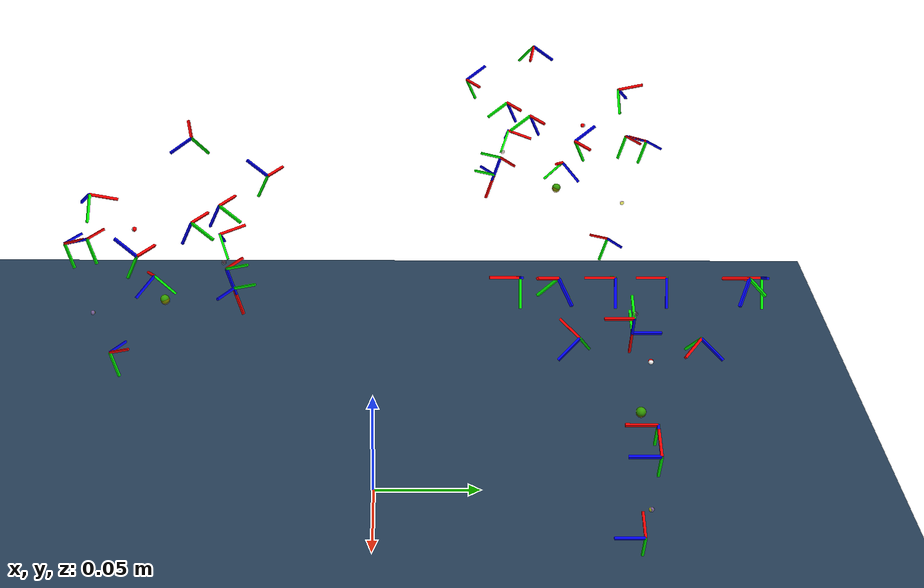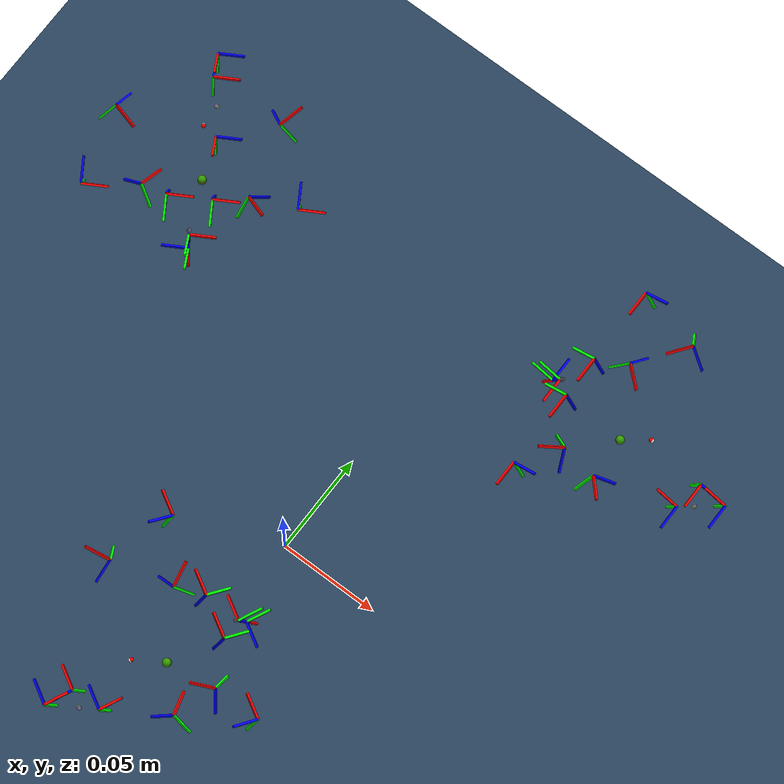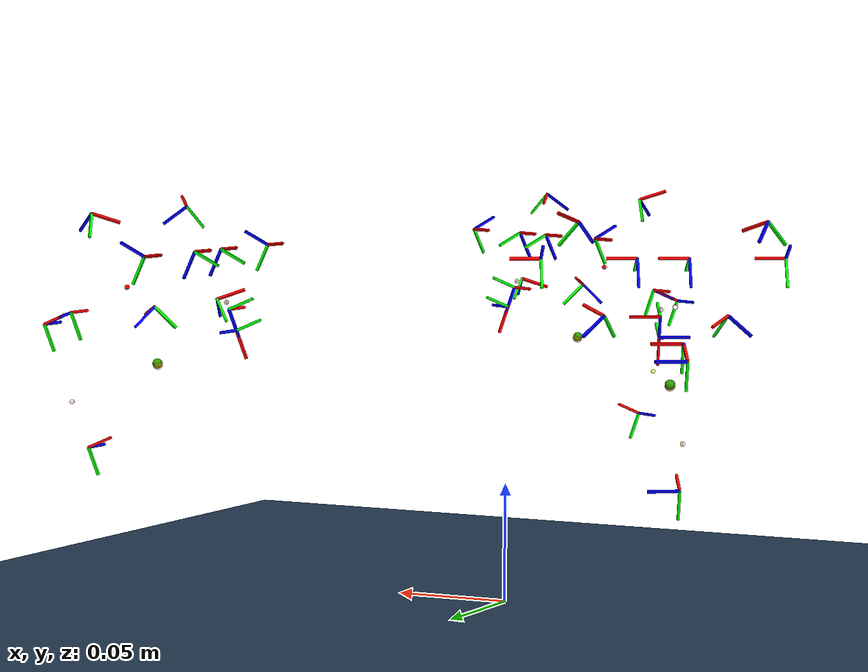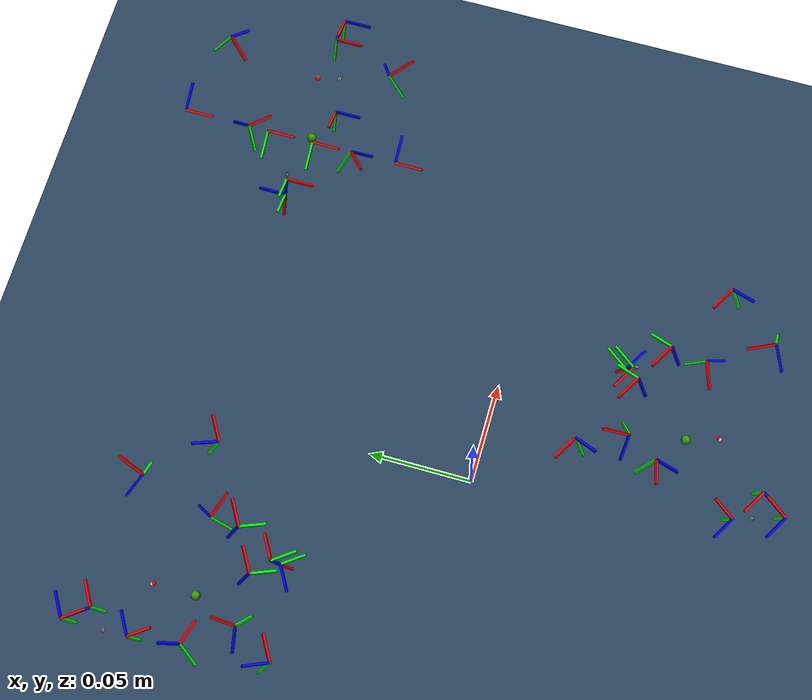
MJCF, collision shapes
<?xml version="1.0"?>
<mujoco model="faithful_3f_cspm">
  <compiler meshdir="stl_file/" angle="degree"/>
  <option timestep="0.0005" iterations="200" tolerance="1e-8" solver="Newton"/>

  <default>
    <default class="silicone_tip">
      <geom type="sphere" size="0.0082" friction="2.0 0.02 0.0001"
            solref="0.0005 200.0" solimp="0.99 0.995 0.0001"
            contype="1" conaffinity="1" condim="6" priority="1"/>
    </default>
  </default>

  <asset>
    <texture type="skybox" builtin="gradient" rgb1="0.3 0.5 0.7" rgb2="0 0 0" width="512" height="512"/>
    <texture type="2d" name="groundplane" builtin="checker" rgb1="0.2 0.3 0.4" rgb2="0.1 0.2 0.3" width="100" height="100"/>
    <material name="groundplane" texture="groundplane" texrepeat="10 10"/>
    <mesh name="mesh_platform" file="platform.STL"/>
    <mesh name="mesh_1_1" file="1_1.STL"/>
    <mesh name="mesh_1_2" file="1_2.STL"/>
    <mesh name="mesh_2_1" file="2_1.STL"/>
    <mesh name="mesh_2_2" file="2_2.STL"/>
    <mesh name="mesh_3_1" file="3_1.STL"/>
    <mesh name="mesh_3_2" file="3_2.STL"/>
    <mesh name="mesh_4_1" file="4_1.STL"/>
    <mesh name="mesh_4_2" file="4_2.STL"/>
    <mesh name="cspm14_adaptor" file="cspm14_adaptor.STL"/>
    <mesh name="cspm23_adaptor" file="cspm23_adaptor.STL"/>
    <mesh name="paralle_short" file="handtip_platform.STL"/>
    <mesh name="paralle_long" file="paralle_long.STL"/>
    <mesh name="sensor" file="sensor.STL"/>
    <mesh name="two_figer_platform" file="two_figer_platform.STL"/>
    <mesh name="base1" file="base1.STL"/>
    <mesh name="base2" file="base2.STL"/>
    <mesh name="hhtac_base" file="hhtac/hhtac_1.STL"/>
    <mesh name="hhtac_contact" file="hhtac/hhtac_contact.STL"/>
  </asset>

  <worldbody>
    <geom name="ground" type="plane" size="0 0 1" pos="0 0 0" quat="1 0 0 0" material="groundplane" condim="1"/>
    <light directional="true" diffuse=".4 .4 .4" specular="0.1 0.1 0.1" pos="0 0 5.0" dir="0 0 -1" castshadow="false"/>
    <light directional="true" diffuse=".6 .6 .6" specular="0.2 0.2 0.2" pos="0 0 4" dir="0 0 -1"/>
    <body name="hand_base" pos="0 0 0.17797187" euler="0 180 0">

    <body name="figer_alpha" pos="0.06105 0.0 0.0" euler="0 0 60">
      <body name="body_platform_alpha" pos="0.066699 -0.0002 -0.00038509"
            quat="0.6889820653006324 0.15906563768307502 0.15906622196486023 0.6889845960777189">

        <geom name="geom_platform_alpha" type="mesh" mesh="base1" rgba="0.5 0.5 0.5 1" contype="0" conaffinity="0"/>

        <!-- Chain 1 -->
        <body name="body_1_1_alpha" pos="0.047 0 0.0305" quat="0.7071067811865462 0.7071067811865488 0.0 0.0">
          <inertial mass="0.007" pos="-0.005907 0 0.014178"
                    fullinertia="1.042e-6 1.101e-6 0.225e-6 0 0.294e-6 0"/>
          <joint name="joint_1_1_alpha" type="hinge" pos="0 0 0" axis="-1 0 0"
                 limited="true" range="-33 213" damping="100" frictionloss="0.05"/>
          <geom name="geom_1_1_alpha" type="mesh" mesh="mesh_1_1" friction="10 0 0"
                rgba="0 0 0.6 1" contype="0" conaffinity="0"/>
          <geom name="x_1_1_alpha" type="box" pos="0.006 0 0" size="0.006 0.0005 0.0005 " rgba="1 0 0 1" contype="0" conaffinity="0"/>
          <geom name="y_1_1_alpha" type="box" pos="0 0.006 0" size="0.0005 0.006 0.0005 " rgba="0 1 0 1" contype="0" conaffinity="0"/>
          <geom name="z_1_1_alpha" type="box" pos="0 0 0.006" size="0.0005 0.0005 0.006" rgba="0 0 1 1" contype="0" conaffinity="0"/>
          <body name="body_1_2_alpha" pos="-0.0116672618895781 0 0.0353370093578838"
                quat="0.8085158559973773 -0.4470520117325275 -0.33489823294780874 -0.18517500634579043">
            <inertial mass="0.008" pos="-0.008956 -8e-6 0.019449"
                      fullinertia="0.83e-6 1.693e-6 1e-6 0 0.748e-6 0"/>
            <joint name="joint_1_2_alpha" type="hinge" pos="0 0 0" axis="1 0 0"
                   limited="true" range="-60 60" damping="1"/>
            <geom name="geom_1_2_alpha" type="mesh" mesh="mesh_1_2" rgba="0 1 0 1" contype="0" conaffinity="0"/>
            <geom name="x_1_2_alpha" type="box" pos="0.006 0 0" size="0.006 0.0005 0.0005 " rgba="1 0 0 1" contype="0" conaffinity="0"/>
            <geom name="y_1_2_alpha" type="box" pos="0 0.006 0" size="0.0005 0.006 0.0005 " rgba="0 1 0 1" contype="0" conaffinity="0"/>
            <geom name="z_1_2_alpha" type="box" pos="0 0 0.006" size="0.0005 0.0005 0.006" rgba="0 0 1 1" contype="0" conaffinity="0"/>
            <site name="site_1_connect_alpha" pos="-0.03045 0 0.03672" size="0.001" rgba="1 0 0 1"/>
          </body>
        </body>

        <!-- Chain 2 -->
        <body name="body_2_1_alpha" pos="0.01 0 0.0305">
          <inertial mass="0.005" pos="0.000519 0 0.01114"
                    fullinertia="0.479e-6 0.574e-6 0.179e-6 0 -0.138e-6 0"/>
          <joint name="joint_2_1_alpha" type="hinge" pos="0 0 0" axis="1 0 0"
                 limited="true" range="-120 120" damping="100" frictionloss="0.05"/>
          <geom name="geom_2_1_alpha" type="mesh" mesh="mesh_2_1" friction="10 0 0"
                rgba="0 0.8 0.4 1" contype="0" conaffinity="0"/>
          <geom name="x_2_1_alpha" type="box" pos="0.006 0 0" size="0.006 0.0005 0.0005 " rgba="1 0 0 1" contype="0" conaffinity="0"/>
          <geom name="y_2_1_alpha" type="box" pos="0 0.006 0" size="0.0005 0.006 0.0005 " rgba="0 1 0 1" contype="0" conaffinity="0"/>
          <geom name="z_2_1_alpha" type="box" pos="0 0 0.006" size="0.0005 0.0005 0.006" rgba="0 0 1 1" contype="0" conaffinity="0"/>
          <body name="body_2_2_alpha" pos="0.013617 0 0.023617"
                quat="0.8878198148494888 0.10586792529977154 0.36774869771815494 0.2555950979184514">
            <inertial mass="0.003" pos="3e-6 9.968e-3 -6.271e-3"
                      fullinertia="0.448e-6 0.321e-6 0.177e-6 0 0 0.153e-6"/>
            <joint name="joint_2_2_alpha" type="hinge" pos="0 0 0" axis="0 0 1"
                   limited="true" range="-60 60" damping="1"/>
            <geom name="x_2_2_alpha" type="box" pos="0.006 0 0" size="0.006 0.0005 0.0005 " rgba="1 0 0 1" contype="0" conaffinity="0"/>
            <geom name="y_2_2_alpha" type="box" pos="0 0.006 0" size="0.0005 0.006 0.0005 " rgba="0 1 0 1" contype="0" conaffinity="0"/>
            <geom name="z_2_2_alpha" type="box" pos="0 0 0.006" size="0.0005 0.0005 0.006" rgba="0 0 1 1" contype="0" conaffinity="0"/>
            <geom name="geom_2_2_alpha" type="mesh" mesh="mesh_2_2" rgba="1 1 0 1" contype="0" conaffinity="0"/>
            <site name="site_2_connect_alpha" pos="0 0.01941147952 -0.02307689935" size="0.001" rgba="1 0 0 0.2"/>
          </body>
        </body>

        <!-- Chain 3 -->
        <body name="body_3_1_alpha" pos="-0.010 0 0.0305">
          <inertial mass="0.005" pos="-0.000256 0 0.01107"
                    fullinertia="0.448e-6 0.574e-6 0.172e-6 0 0.131e-6 0"/>
          <joint name="joint_3_1_alpha" type="hinge" pos="0 0 0" axis="1 0 0"
                 limited="true" range="-120 120" damping="100" frictionloss="0.05"/>
          <geom name="geom_3_1_alpha" type="mesh" mesh="mesh_3_1" friction="10 0 0"
                rgba="0 0.8 0.8 1" contype="0" conaffinity="0"/>
          <geom name="x_3_1_alpha" type="box" pos="0.006 0 0" size="0.006 0.0005 0.0005 " rgba="1 0 0 1" contype="0" conaffinity="0"/>
          <geom name="y_3_1_alpha" type="box" pos="0 0.006 0" size="0.0005 0.006 0.0005 " rgba="0 1 0 1" contype="0" conaffinity="0"/>
          <geom name="z_3_1_alpha" type="box" pos="0 0 0.006" size="0.0005 0.0005 0.006" rgba="0 0 1 1" contype="0" conaffinity="0"/>
          <body name="body_3_2_alpha" pos="-0.0136170093578839 0 0.0236170093578839"
                quat="0.8878205535117507 0.10587030883141682 -0.367747314218155 -0.255593535433435">
            <inertial mass="0.003" pos="0 10.069e-3 -7.195e-3"
                      fullinertia="0.526e-6 0.34e-6 0.247e-6 0 0 0.236e-6"/>
            <joint name="joint_3_2_alpha" type="hinge" pos="0 0 0" axis="0 0 1"
                   limited="true" range="-60 60" damping="1"/>
            <geom name="x_3_2_alpha" type="box" pos="0.006 0 0" size="0.006 0.0005 0.0005 " rgba="1 0 0 1" contype="0" conaffinity="0"/>
            <geom name="y_3_2_alpha" type="box" pos="0 0.006 0" size="0.0005 0.006 0.0005 " rgba="0 1 0 1" contype="0" conaffinity="0"/>
            <geom name="z_3_2_alpha" type="box" pos="0 0 0.006" size="0.0005 0.0005 0.006" rgba="0 0 1 1" contype="0" conaffinity="0"/>
            <geom name="geom_3_2_alpha" type="mesh" mesh="mesh_3_2" friction="0.5 0 0" rgba="0.4 0.8 0.4 1" contype="0" conaffinity="0"/>
            <site name="site_3_connect_alpha" pos="0 0.0194108877 -0.02307493063" size="0.001" rgba="1 1 1 0.4"/>
            <!-- CSPM23 adaptor + paralle_long -->
            <body name="cspm23_adaptor_alpha" pos="0 0.02206 -0.021667"
                  quat="0.7664016139459412 -0.46050129008309315 0.2306580916677669 0.38388015411199305">
              <inertial mass="0.003" pos="0 0 7.02e-3" diaginertia="0.082e-6 0.08e-6 0.062e-6"/>
              <joint name="cspm23_adaptor_joint_alpha" type="hinge" pos="0 0 0" axis="0 0 1"
                     limited="true" range="-120 120" damping="10"/>
              <geom name="geom_cspm23_adaptor_alpha" type="mesh" mesh="cspm23_adaptor" rgba="0.8 0 0 1" contype="0" conaffinity="0"/>
              <geom name="x_cspm23_adaptor_alpha" type="box" pos="0.006 0 0" size="0.006 0.0005 0.0005 " rgba="1 0 0 1" contype="0" conaffinity="0"/>
              <geom name="y_cspm23_adaptor_alpha" type="box" pos="0 0.006 0" size="0.0005 0.006 0.0005 " rgba="0 1 0 1" contype="0" conaffinity="0"/>
              <geom name="z_cspm23_adaptor_alpha" type="box" pos="0 0 0.006" size="0.0005 0.0005 0.006" rgba="0 0 1 1" contype="0" conaffinity="0"/>
              <body name="paralle_long_link_alpha" pos="0 0 0.009"
                    quat="0.707106607039899 0.0004936760326029743 -0.7071066106666457 -0.0004936760326030298">
                <inertial mass="0.004" pos="-1.12e-3 -41.772e-3 0" diaginertia="3.16e-6 0.017e-6 3.172e-6"/>
                <joint name="paralle_long_joint_alpha" type="hinge" pos="0 0 0" axis="0 0 1"
                       limited="true" range="-60 60" damping="1"/>
                <geom name="geom_paralle_long_alpha" type="mesh" mesh="paralle_long" rgba="1 1 1 1" contype="0" conaffinity="0"/>
                <geom name="x_paralle_long_alpha" type="box" pos="0.006 0 0" size="0.006 0.0005 0.0005 " rgba="1 0 0 1" contype="0" conaffinity="0"/>
                <geom name="y_paralle_long_alpha" type="box" pos="0 0.006 0" size="0.0005 0.006 0.0005 " rgba="0 1 0 1" contype="0" conaffinity="0"/>
                <geom name="z_paralle_long_alpha" type="box" pos="0 0 0.006" size="0.0005 0.0005 0.006" rgba="0 0 1 1" contype="0" conaffinity="0"/>
                <site name="site_parallel_long_connect_alpha" pos="0 -0.085 0" size="0.001" rgba="1 0.6 1 0.4"/>
                <site name="site_parallel_long_connect_2_alpha" pos="0 -0.040 0" size="0.002" rgba="1 0.6 0 0.4"/>
              </body>
            </body>
          </body>
        </body>

        <!-- Chain 4 -->
        <body name="body_4_1_alpha" pos="-0.047 0 0.0305" quat="0.7071067811865462 0.7071067811865488 0.0 0.0">
          <inertial mass="0.007" pos="0.005907 0 0.014178"
                    fullinertia="1.042e-6 1.101e-6 0.225e-6 0 -0.294e-6 0"/>
          <joint name="joint_4_1_alpha" type="hinge" pos="0 0 0" axis="-1 0 0"
                 limited="true" range="-33 213" damping="100" frictionloss="0.05"/>
          <geom name="geom_4_1_alpha" type="mesh" mesh="mesh_4_1" friction="10 0 0" rgba="0 0 1 1" contype="0" conaffinity="0"/>
          <geom name="x_4_1_alpha" type="box" pos="0.006 0 0" size="0.006 0.0005 0.0005 " rgba="1 0 0 1" contype="0" conaffinity="0"/>
          <geom name="y_4_1_alpha" type="box" pos="0 0.006 0" size="0.0005 0.006 0.0005 " rgba="0 1 0 1" contype="0" conaffinity="0"/>
          <geom name="z_4_1_alpha" type="box" pos="0 0 0.006" size="0.0005 0.0005 0.006" rgba="0 0 1 1" contype="0" conaffinity="0"/>
          <body name="body_4_2_alpha" pos="0.0116672618895781 0 0.0353370093578838"
                quat="0.8085158559973775 -0.4470520117325276 0.3348982329478083 0.18517500634579018">
            <inertial mass="0.021" pos="0.013361 0 42.171e-3"
                      fullinertia="8.646e-6 10.369e-6 2.697e-6 0 -3.173e-6 0"/>
            <joint name="joint_4_2_alpha" type="hinge" pos="0 0 0" axis="1 0 0"
                   limited="true" range="-60 60" damping="1"/>
            <geom name="geom_4_2_alpha" type="mesh" mesh="mesh_4_2" rgba="1 1 0 1" contype="0" conaffinity="0"/>
            <geom name="x_4_2_alpha" type="box" pos="0.006 0 0" size="0.006 0.0005 0.0005 " rgba="1 0 0 1" contype="0" conaffinity="0"/>
            <geom name="y_4_2_alpha" type="box" pos="0 0.006 0" size="0.0005 0.006 0.0005 " rgba="0 1 0 1" contype="0" conaffinity="0"/>
            <geom name="z_4_2_alpha" type="box" pos="0 0 0.006" size="0.0005 0.0005 0.006" rgba="0 0 1 1" contype="0" conaffinity="0"/>
            <!-- CSPM14 adaptor + paralle_short + fingertip -->
            <body name="cspm14_adaptor_alpha" pos="0.016605179614597 0 0.0627554939638426"
                  quat="0.9207201443783664 0.07634007027212154 -0.2295613147753419 -0.3061832983122107">
              <inertial mass="0.002" pos="0 -0.088e-3 4.631e-3" fullinertia="0.104e-6 0.103e-6 0.033e-6 0 0 0.001e-6"/>
              <joint name="cspm14_adaptor_joint_alpha" type="hinge" pos="0 0 0" axis="0 0 1"
                     limited="true" range="-120 120" damping="10"/>
              <geom name="geom_cspm14_adaptor_alpha" type="mesh" mesh="cspm14_adaptor" rgba="1 0 0 1" contype="0" conaffinity="0"/>
              <geom name="x_cspm14_adaptor_alpha" type="box" pos="0.006 0 0" size="0.006 0.0005 0.0005 " rgba="1 0 0 1" contype="0" conaffinity="0"/>
              <geom name="y_cspm14_adaptor_alpha" type="box" pos="0 0.006 0" size="0.0005 0.006 0.0005 " rgba="0 1 0 1" contype="0" conaffinity="0"/>
              <geom name="z_cspm14_adaptor_alpha" type="box" pos="0 0 0.006" size="0.0005 0.0005 0.006" rgba="0 0 1 1" contype="0" conaffinity="0"/>
              <body name="paralle_short_link_alpha" pos="0 -0.000128452409223868 0.01421"
                    quat="0.7071006257529511 -0.0029504338299677357 0.7071006257529511 -0.0029504338299677357">
                <inertial mass="0.012" pos="0.085e-3 34.705e-3 0" fullinertia="3.562e-6 0.328e-6 3.581e-6 0.014e-6 0 0"/>
                <joint name="paralle_short_joint_alpha" type="hinge" pos="0 0 0" axis="0 0 1"
                       limited="true" range="-60 60" damping="1"/>
                <geom name="geom_paralle_short_alpha" type="mesh" mesh="paralle_short" rgba="0.5 0.3 0.8 1" contype="0" conaffinity="0"/>
                <geom name="x_paralle_short_alpha" type="box" pos="0.006 0 0" size="0.006 0.0005 0.0005 " rgba="1 0 0 1" contype="0" conaffinity="0"/>
                <geom name="y_paralle_short_alpha" type="box" pos="0 0.006 0" size="0.0005 0.006 0.0005 " rgba="0 1 0 1" contype="0" conaffinity="0"/>
                <geom name="z_paralle_short_alpha" type="box" pos="0 0 0.006" size="0.0005 0.0005 0.006" rgba="0 0 1 1" contype="0" conaffinity="0"/>
                <site name="site_parallel_short_connect_alpha" pos="0 0.034 0" size="0.001" rgba="1 1 0 0.6"/>
                <site name="site_parallel_short_connect_2_alpha" pos="0.045 0.034 0" size="0.002" rgba="0.2 0.6 0 1"/>
                <!-- Fingertip module -->
                <body name="hhtac_base_alpha" pos="0 0.054 0" quat="1 0 0 0">
                  <inertial mass="0.033" pos="0.028e-3 24.598e-3 0" diaginertia="6.926e-6 6.598e-6 6.946e-6"/>
                  <geom name="geom_sensor_alpha" type="mesh" mesh="hhtac_base" rgba="0.6 1 1 1" contype="0" conaffinity="0"/>
                  <geom name="x_sensor_alpha" type="box" pos="0.006 0 0" size="0.006 0.0005 0.0005 " rgba="1 0 0 1" contype="0" conaffinity="0"/>
                  <geom name="y_sensor_alpha" type="box" pos="0 0.006 0" size="0.0005 0.006 0.0005 " rgba="0 1 0 1" contype="0" conaffinity="0"/>
                  <geom name="z_sensor_alpha" type="box" pos="0 0 0.006" size="0.0005 0.0005 0.006" rgba="0 0 1 1" contype="0" conaffinity="0"/>
                  <body name="hhtac_contact_alpha" pos="0 42.5e-3 0" quat="1 0 0 0">
                    <inertial mass="0.013" pos="0 10.164e-3 0" diaginertia="1.157e-6 1.482e-6 1.157e-6"/>
                    <geom name="hhtac_contact_alpha" type="mesh" mesh="hhtac_contact" contype="0" conaffinity="0"
                          friction="1.5 0.1 0.005" solimp="0.95 1 0.001" solref="-0.0001 0.99" margin="0.003"
                          rgba="1 1 1 1"/>
                  </body>
                </body>
              </body>
            </body>
            <site name="site_4_connect_alpha" pos="0.03033 0 0.03694" size="0.001" rgba="1 1 1 1"/>
          </body>
        </body>

      </body>
    </body>

    <body name="figer_beta" pos="-0.06105 0.0 0.0" euler="0 0 -60">
      <body name="body_platform_beta" pos="0.066699 -0.0002 -0.00038509"
            quat="0.6889820653006324 0.15906563768307502 0.15906622196486023 0.6889845960777189">

        <geom name="geom_platform_beta" type="mesh" mesh="base1" rgba="0.5 0.5 0.5 1" contype="0" conaffinity="0"/>

        <!-- Chain 1 -->
        <body name="body_1_1_beta" pos="0.047 0 0.0305" quat="0.7071067811865462 0.7071067811865488 0.0 0.0">
          <inertial mass="0.007" pos="-0.005907 0 0.014178"
                    fullinertia="1.042e-6 1.101e-6 0.225e-6 0 0.294e-6 0"/>
          <joint name="joint_1_1_beta" type="hinge" pos="0 0 0" axis="-1 0 0"
                 limited="true" range="-33 213" damping="100" frictionloss="0.05"/>
          <geom name="geom_1_1_beta" type="mesh" mesh="mesh_1_1" friction="10 0 0"
                rgba="0 0 0.6 1" contype="0" conaffinity="0"/>
          <geom name="x_1_1_beta" type="box" pos="0.006 0 0" size="0.006 0.0005 0.0005 " rgba="1 0 0 1" contype="0" conaffinity="0"/>
          <geom name="y_1_1_beta" type="box" pos="0 0.006 0" size="0.0005 0.006 0.0005 " rgba="0 1 0 1" contype="0" conaffinity="0"/>
          <geom name="z_1_1_beta" type="box" pos="0 0 0.006" size="0.0005 0.0005 0.006" rgba="0 0 1 1" contype="0" conaffinity="0"/>
          <body name="body_1_2_beta" pos="-0.0116672618895781 0 0.0353370093578838"
                quat="0.8085158559973773 -0.4470520117325275 -0.33489823294780874 -0.18517500634579043">
            <inertial mass="0.008" pos="-0.008956 -8e-6 0.019449"
                      fullinertia="0.83e-6 1.693e-6 1e-6 0 0.748e-6 0"/>
            <joint name="joint_1_2_beta" type="hinge" pos="0 0 0" axis="1 0 0"
                   limited="true" range="-60 60" damping="1"/>
            <geom name="geom_1_2_beta" type="mesh" mesh="mesh_1_2" rgba="0 1 0 1" contype="0" conaffinity="0"/>
            <geom name="x_1_2_beta" type="box" pos="0.006 0 0" size="0.006 0.0005 0.0005 " rgba="1 0 0 1" contype="0" conaffinity="0"/>
            <geom name="y_1_2_beta" type="box" pos="0 0.006 0" size="0.0005 0.006 0.0005 " rgba="0 1 0 1" contype="0" conaffinity="0"/>
            <geom name="z_1_2_beta" type="box" pos="0 0 0.006" size="0.0005 0.0005 0.006" rgba="0 0 1 1" contype="0" conaffinity="0"/>
            <site name="site_1_connect_beta" pos="-0.03045 0 0.03672" size="0.001" rgba="1 0 0 1"/>
          </body>
        </body>

        <!-- Chain 2 -->
        <body name="body_2_1_beta" pos="0.01 0 0.0305">
          <inertial mass="0.005" pos="0.000519 0 0.01114"
                    fullinertia="0.479e-6 0.574e-6 0.179e-6 0 -0.138e-6 0"/>
          <joint name="joint_2_1_beta" type="hinge" pos="0 0 0" axis="1 0 0"
                 limited="true" range="-120 120" damping="100" frictionloss="0.05"/>
          <geom name="geom_2_1_beta" type="mesh" mesh="mesh_2_1" friction="10 0 0"
                rgba="0 0.8 0.4 1" contype="0" conaffinity="0"/>
          <geom name="x_2_1_beta" type="box" pos="0.006 0 0" size="0.006 0.0005 0.0005 " rgba="1 0 0 1" contype="0" conaffinity="0"/>
          <geom name="y_2_1_beta" type="box" pos="0 0.006 0" size="0.0005 0.006 0.0005 " rgba="0 1 0 1" contype="0" conaffinity="0"/>
          <geom name="z_2_1_beta" type="box" pos="0 0 0.006" size="0.0005 0.0005 0.006" rgba="0 0 1 1" contype="0" conaffinity="0"/>
          <body name="body_2_2_beta" pos="0.013617 0 0.023617"
                quat="0.8878198148494888 0.10586792529977154 0.36774869771815494 0.2555950979184514">
            <inertial mass="0.003" pos="3e-6 9.968e-3 -6.271e-3"
                      fullinertia="0.448e-6 0.321e-6 0.177e-6 0 0 0.153e-6"/>
            <joint name="joint_2_2_beta" type="hinge" pos="0 0 0" axis="0 0 1"
                   limited="true" range="-60 60" damping="1"/>
            <geom name="x_2_2_beta" type="box" pos="0.006 0 0" size="0.006 0.0005 0.0005 " rgba="1 0 0 1" contype="0" conaffinity="0"/>
            <geom name="y_2_2_beta" type="box" pos="0 0.006 0" size="0.0005 0.006 0.0005 " rgba="0 1 0 1" contype="0" conaffinity="0"/>
            <geom name="z_2_2_beta" type="box" pos="0 0 0.006" size="0.0005 0.0005 0.006" rgba="0 0 1 1" contype="0" conaffinity="0"/>
            <geom name="geom_2_2_beta" type="mesh" mesh="mesh_2_2" rgba="1 1 0 1" contype="0" conaffinity="0"/>
            <site name="site_2_connect_beta" pos="0 0.01941147952 -0.02307689935" size="0.001" rgba="1 0 0 0.2"/>
          </body>
        </body>

        <!-- Chain 3 -->
        <body name="body_3_1_beta" pos="-0.010 0 0.0305">
          <inertial mass="0.005" pos="-0.000256 0 0.01107"
                    fullinertia="0.448e-6 0.574e-6 0.172e-6 0 0.131e-6 0"/>
          <joint name="joint_3_1_beta" type="hinge" pos="0 0 0" axis="1 0 0"
                 limited="true" range="-120 120" damping="100" frictionloss="0.05"/>
          <geom name="geom_3_1_beta" type="mesh" mesh="mesh_3_1" friction="10 0 0"
                rgba="0 0.8 0.8 1" contype="0" conaffinity="0"/>
          <geom name="x_3_1_beta" type="box" pos="0.006 0 0" size="0.006 0.0005 0.0005 " rgba="1 0 0 1" contype="0" conaffinity="0"/>
          <geom name="y_3_1_beta" type="box" pos="0 0.006 0" size="0.0005 0.006 0.0005 " rgba="0 1 0 1" contype="0" conaffinity="0"/>
          <geom name="z_3_1_beta" type="box" pos="0 0 0.006" size="0.0005 0.0005 0.006" rgba="0 0 1 1" contype="0" conaffinity="0"/>
          <body name="body_3_2_beta" pos="-0.0136170093578839 0 0.0236170093578839"
                quat="0.8878205535117507 0.10587030883141682 -0.367747314218155 -0.255593535433435">
            <inertial mass="0.003" pos="0 10.069e-3 -7.195e-3"
                      fullinertia="0.526e-6 0.34e-6 0.247e-6 0 0 0.236e-6"/>
            <joint name="joint_3_2_beta" type="hinge" pos="0 0 0" axis="0 0 1"
                   limited="true" range="-60 60" damping="1"/>
            <geom name="x_3_2_beta" type="box" pos="0.006 0 0" size="0.006 0.0005 0.0005 " rgba="1 0 0 1" contype="0" conaffinity="0"/>
            <geom name="y_3_2_beta" type="box" pos="0 0.006 0" size="0.0005 0.006 0.0005 " rgba="0 1 0 1" contype="0" conaffinity="0"/>
            <geom name="z_3_2_beta" type="box" pos="0 0 0.006" size="0.0005 0.0005 0.006" rgba="0 0 1 1" contype="0" conaffinity="0"/>
            <geom name="geom_3_2_beta" type="mesh" mesh="mesh_3_2" friction="0.5 0 0" rgba="0.4 0.8 0.4 1" contype="0" conaffinity="0"/>
            <site name="site_3_connect_beta" pos="0 0.0194108877 -0.02307493063" size="0.001" rgba="1 1 1 0.4"/>
            <!-- CSPM23 adaptor + paralle_long -->
            <body name="cspm23_adaptor_beta" pos="0 0.02206 -0.021667"
                  quat="0.7664016139459412 -0.46050129008309315 0.2306580916677669 0.38388015411199305">
              <inertial mass="0.003" pos="0 0 7.02e-3" diaginertia="0.082e-6 0.08e-6 0.062e-6"/>
              <joint name="cspm23_adaptor_joint_beta" type="hinge" pos="0 0 0" axis="0 0 1"
                     limited="true" range="-120 120" damping="10"/>
              <geom name="geom_cspm23_adaptor_beta" type="mesh" mesh="cspm23_adaptor" rgba="0.8 0 0 1" contype="0" conaffinity="0"/>
              <geom name="x_cspm23_adaptor_beta" type="box" pos="0.006 0 0" size="0.006 0.0005 0.0005 " rgba="1 0 0 1" contype="0" conaffinity="0"/>
              <geom name="y_cspm23_adaptor_beta" type="box" pos="0 0.006 0" size="0.0005 0.006 0.0005 " rgba="0 1 0 1" contype="0" conaffinity="0"/>
              <geom name="z_cspm23_adaptor_beta" type="box" pos="0 0 0.006" size="0.0005 0.0005 0.006" rgba="0 0 1 1" contype="0" conaffinity="0"/>
              <body name="paralle_long_link_beta" pos="0 0 0.009"
                    quat="0.707106607039899 0.0004936760326029743 -0.7071066106666457 -0.0004936760326030298">
                <inertial mass="0.004" pos="-1.12e-3 -41.772e-3 0" diaginertia="3.16e-6 0.017e-6 3.172e-6"/>
                <joint name="paralle_long_joint_beta" type="hinge" pos="0 0 0" axis="0 0 1"
                       limited="true" range="-60 60" damping="1"/>
                <geom name="geom_paralle_long_beta" type="mesh" mesh="paralle_long" rgba="1 1 1 1" contype="0" conaffinity="0"/>
                <geom name="x_paralle_long_beta" type="box" pos="0.006 0 0" size="0.006 0.0005 0.0005 " rgba="1 0 0 1" contype="0" conaffinity="0"/>
                <geom name="y_paralle_long_beta" type="box" pos="0 0.006 0" size="0.0005 0.006 0.0005 " rgba="0 1 0 1" contype="0" conaffinity="0"/>
                <geom name="z_paralle_long_beta" type="box" pos="0 0 0.006" size="0.0005 0.0005 0.006" rgba="0 0 1 1" contype="0" conaffinity="0"/>
                <site name="site_parallel_long_connect_beta" pos="0 -0.085 0" size="0.001" rgba="1 0.6 1 0.4"/>
                <site name="site_parallel_long_connect_2_beta" pos="0 -0.040 0" size="0.002" rgba="1 0.6 0 0.4"/>
              </body>
            </body>
          </body>
        </body>

        <!-- Chain 4 -->
        <body name="body_4_1_beta" pos="-0.047 0 0.0305" quat="0.7071067811865462 0.7071067811865488 0.0 0.0">
          <inertial mass="0.007" pos="0.005907 0 0.014178"
                    fullinertia="1.042e-6 1.101e-6 0.225e-6 0 -0.294e-6 0"/>
          <joint name="joint_4_1_beta" type="hinge" pos="0 0 0" axis="-1 0 0"
                 limited="true" range="-33 213" damping="100" frictionloss="0.05"/>
          <geom name="geom_4_1_beta" type="mesh" mesh="mesh_4_1" friction="10 0 0" rgba="0 0 1 1" contype="0" conaffinity="0"/>
          <geom name="x_4_1_beta" type="box" pos="0.006 0 0" size="0.006 0.0005 0.0005 " rgba="1 0 0 1" contype="0" conaffinity="0"/>
          <geom name="y_4_1_beta" type="box" pos="0 0.006 0" size="0.0005 0.006 0.0005 " rgba="0 1 0 1" contype="0" conaffinity="0"/>
          <geom name="z_4_1_beta" type="box" pos="0 0 0.006" size="0.0005 0.0005 0.006" rgba="0 0 1 1" contype="0" conaffinity="0"/>
          <body name="body_4_2_beta" pos="0.0116672618895781 0 0.0353370093578838"
                quat="0.8085158559973775 -0.4470520117325276 0.3348982329478083 0.18517500634579018">
            <inertial mass="0.021" pos="0.013361 0 42.171e-3"
                      fullinertia="8.646e-6 10.369e-6 2.697e-6 0 -3.173e-6 0"/>
            <joint name="joint_4_2_beta" type="hinge" pos="0 0 0" axis="1 0 0"
                   limited="true" range="-60 60" damping="1"/>
            <geom name="geom_4_2_beta" type="mesh" mesh="mesh_4_2" rgba="1 1 0 1" contype="0" conaffinity="0"/>
            <geom name="x_4_2_beta" type="box" pos="0.006 0 0" size="0.006 0.0005 0.0005 " rgba="1 0 0 1" contype="0" conaffinity="0"/>
            <geom name="y_4_2_beta" type="box" pos="0 0.006 0" size="0.0005 0.006 0.0005 " rgba="0 1 0 1" contype="0" conaffinity="0"/>
            <geom name="z_4_2_beta" type="box" pos="0 0 0.006" size="0.0005 0.0005 0.006" rgba="0 0 1 1" contype="0" conaffinity="0"/>
            <!-- CSPM14 adaptor + paralle_short + fingertip -->
            <body name="cspm14_adaptor_beta" pos="0.016605179614597 0 0.0627554939638426"
                  quat="0.9207201443783664 0.07634007027212154 -0.2295613147753419 -0.3061832983122107">
              <inertial mass="0.002" pos="0 -0.088e-3 4.631e-3" fullinertia="0.104e-6 0.103e-6 0.033e-6 0 0 0.001e-6"/>
              <joint name="cspm14_adaptor_joint_beta" type="hinge" pos="0 0 0" axis="0 0 1"
                     limited="true" range="-120 120" damping="10"/>
              <geom name="geom_cspm14_adaptor_beta" type="mesh" mesh="cspm14_adaptor" rgba="1 0 0 1" contype="0" conaffinity="0"/>
              <geom name="x_cspm14_adaptor_beta" type="box" pos="0.006 0 0" size="0.006 0.0005 0.0005 " rgba="1 0 0 1" contype="0" conaffinity="0"/>
              <geom name="y_cspm14_adaptor_beta" type="box" pos="0 0.006 0" size="0.0005 0.006 0.0005 " rgba="0 1 0 1" contype="0" conaffinity="0"/>
              <geom name="z_cspm14_adaptor_beta" type="box" pos="0 0 0.006" size="0.0005 0.0005 0.006" rgba="0 0 1 1" contype="0" conaffinity="0"/>
              <body name="paralle_short_link_beta" pos="0 -0.000128452409223868 0.01421"
                    quat="0.7071006257529511 -0.0029504338299677357 0.7071006257529511 -0.0029504338299677357">
                <inertial mass="0.012" pos="0.085e-3 34.705e-3 0" fullinertia="3.562e-6 0.328e-6 3.581e-6 0.014e-6 0 0"/>
                <joint name="paralle_short_joint_beta" type="hinge" pos="0 0 0" axis="0 0 1"
                       limited="true" range="-60 60" damping="1"/>
                <geom name="geom_paralle_short_beta" type="mesh" mesh="paralle_short" rgba="0.5 0.3 0.8 1" contype="0" conaffinity="0"/>
                <geom name="x_paralle_short_beta" type="box" pos="0.006 0 0" size="0.006 0.0005 0.0005 " rgba="1 0 0 1" contype="0" conaffinity="0"/>
                <geom name="y_paralle_short_beta" type="box" pos="0 0.006 0" size="0.0005 0.006 0.0005 " rgba="0 1 0 1" contype="0" conaffinity="0"/>
                <geom name="z_paralle_short_beta" type="box" pos="0 0 0.006" size="0.0005 0.0005 0.006" rgba="0 0 1 1" contype="0" conaffinity="0"/>
                <site name="site_parallel_short_connect_beta" pos="0 0.034 0" size="0.001" rgba="1 1 0 0.6"/>
                <site name="site_parallel_short_connect_2_beta" pos="0.045 0.034 0" size="0.002" rgba="0.2 0.6 0 1"/>
                <!-- Fingertip module -->
                <body name="hhtac_base_beta" pos="0 0.054 0" quat="1 0 0 0">
                  <inertial mass="0.033" pos="0.028e-3 24.598e-3 0" diaginertia="6.926e-6 6.598e-6 6.946e-6"/>
                  <geom name="geom_sensor_beta" type="mesh" mesh="hhtac_base" rgba="0.6 1 1 1" contype="0" conaffinity="0"/>
                  <geom name="x_sensor_beta" type="box" pos="0.006 0 0" size="0.006 0.0005 0.0005 " rgba="1 0 0 1" contype="0" conaffinity="0"/>
                  <geom name="y_sensor_beta" type="box" pos="0 0.006 0" size="0.0005 0.006 0.0005 " rgba="0 1 0 1" contype="0" conaffinity="0"/>
                  <geom name="z_sensor_beta" type="box" pos="0 0 0.006" size="0.0005 0.0005 0.006" rgba="0 0 1 1" contype="0" conaffinity="0"/>
                  <body name="hhtac_contact_beta" pos="0 42.5e-3 0" quat="1 0 0 0">
                    <inertial mass="0.013" pos="0 10.164e-3 0" diaginertia="1.157e-6 1.482e-6 1.157e-6"/>
                    <geom name="hhtac_contact_beta" type="mesh" mesh="hhtac_contact" contype="0" conaffinity="0"
                          friction="1.5 0.1 0.005" solimp="0.95 1 0.001" solref="-0.0001 0.99" margin="0.003"
                          rgba="1 1 1 1"/>
                  </body>
                </body>
              </body>
            </body>
            <site name="site_4_connect_beta" pos="0.03033 0 0.03694" size="0.001" rgba="1 1 1 1"/>
          </body>
        </body>

      </body>
    </body>

    <body name="figer_gamma" pos="0.0 0.1057417 0.0" euler="0 0 -180">
      <body name="body_platform_gamma" pos="0.066699 -0.0002 -0.00038509"
            quat="0.6889820653006324 0.15906563768307502 0.15906622196486023 0.6889845960777189">

        <geom name="geom_platform_gamma" type="mesh" mesh="base1" rgba="0.5 0.5 0.5 1" contype="0" conaffinity="0"/>

        <!-- Chain 1 -->
        <body name="body_1_1_gamma" pos="0.047 0 0.0305" quat="0.7071067811865462 0.7071067811865488 0.0 0.0">
          <inertial mass="0.007" pos="-0.005907 0 0.014178"
                    fullinertia="1.042e-6 1.101e-6 0.225e-6 0 0.294e-6 0"/>
          <joint name="joint_1_1_gamma" type="hinge" pos="0 0 0" axis="-1 0 0"
                 limited="true" range="-33 213" damping="100" frictionloss="0.05"/>
          <geom name="geom_1_1_gamma" type="mesh" mesh="mesh_1_1" friction="10 0 0"
                rgba="0 0 0.6 1" contype="0" conaffinity="0"/>
          <geom name="x_1_1_gamma" type="box" pos="0.006 0 0" size="0.006 0.0005 0.0005 " rgba="1 0 0 1" contype="0" conaffinity="0"/>
          <geom name="y_1_1_gamma" type="box" pos="0 0.006 0" size="0.0005 0.006 0.0005 " rgba="0 1 0 1" contype="0" conaffinity="0"/>
          <geom name="z_1_1_gamma" type="box" pos="0 0 0.006" size="0.0005 0.0005 0.006" rgba="0 0 1 1" contype="0" conaffinity="0"/>
          <body name="body_1_2_gamma" pos="-0.0116672618895781 0 0.0353370093578838"
                quat="0.8085158559973773 -0.4470520117325275 -0.33489823294780874 -0.18517500634579043">
            <inertial mass="0.008" pos="-0.008956 -8e-6 0.019449"
                      fullinertia="0.83e-6 1.693e-6 1e-6 0 0.748e-6 0"/>
            <joint name="joint_1_2_gamma" type="hinge" pos="0 0 0" axis="1 0 0"
                   limited="true" range="-60 60" damping="1"/>
            <geom name="geom_1_2_gamma" type="mesh" mesh="mesh_1_2" rgba="0 1 0 1" contype="0" conaffinity="0"/>
            <geom name="x_1_2_gamma" type="box" pos="0.006 0 0" size="0.006 0.0005 0.0005 " rgba="1 0 0 1" contype="0" conaffinity="0"/>
            <geom name="y_1_2_gamma" type="box" pos="0 0.006 0" size="0.0005 0.006 0.0005 " rgba="0 1 0 1" contype="0" conaffinity="0"/>
            <geom name="z_1_2_gamma" type="box" pos="0 0 0.006" size="0.0005 0.0005 0.006" rgba="0 0 1 1" contype="0" conaffinity="0"/>
            <site name="site_1_connect_gamma" pos="-0.03045 0 0.03672" size="0.001" rgba="1 0 0 1"/>
          </body>
        </body>

        <!-- Chain 2 -->
        <body name="body_2_1_gamma" pos="0.01 0 0.0305">
          <inertial mass="0.005" pos="0.000519 0 0.01114"
                    fullinertia="0.479e-6 0.574e-6 0.179e-6 0 -0.138e-6 0"/>
          <joint name="joint_2_1_gamma" type="hinge" pos="0 0 0" axis="1 0 0"
                 limited="true" range="-120 120" damping="100" frictionloss="0.05"/>
          <geom name="geom_2_1_gamma" type="mesh" mesh="mesh_2_1" friction="10 0 0"
                rgba="0 0.8 0.4 1" contype="0" conaffinity="0"/>
          <geom name="x_2_1_gamma" type="box" pos="0.006 0 0" size="0.006 0.0005 0.0005 " rgba="1 0 0 1" contype="0" conaffinity="0"/>
          <geom name="y_2_1_gamma" type="box" pos="0 0.006 0" size="0.0005 0.006 0.0005 " rgba="0 1 0 1" contype="0" conaffinity="0"/>
          <geom name="z_2_1_gamma" type="box" pos="0 0 0.006" size="0.0005 0.0005 0.006" rgba="0 0 1 1" contype="0" conaffinity="0"/>
          <body name="body_2_2_gamma" pos="0.013617 0 0.023617"
                quat="0.8878198148494888 0.10586792529977154 0.36774869771815494 0.2555950979184514">
            <inertial mass="0.003" pos="3e-6 9.968e-3 -6.271e-3"
                      fullinertia="0.448e-6 0.321e-6 0.177e-6 0 0 0.153e-6"/>
            <joint name="joint_2_2_gamma" type="hinge" pos="0 0 0" axis="0 0 1"
                   limited="true" range="-60 60" damping="1"/>
            <geom name="x_2_2_gamma" type="box" pos="0.006 0 0" size="0.006 0.0005 0.0005 " rgba="1 0 0 1" contype="0" conaffinity="0"/>
            <geom name="y_2_2_gamma" type="box" pos="0 0.006 0" size="0.0005 0.006 0.0005 " rgba="0 1 0 1" contype="0" conaffinity="0"/>
            <geom name="z_2_2_gamma" type="box" pos="0 0 0.006" size="0.0005 0.0005 0.006" rgba="0 0 1 1" contype="0" conaffinity="0"/>
            <geom name="geom_2_2_gamma" type="mesh" mesh="mesh_2_2" rgba="1 1 0 1" contype="0" conaffinity="0"/>
            <site name="site_2_connect_gamma" pos="0 0.01941147952 -0.02307689935" size="0.001" rgba="1 0 0 0.2"/>
          </body>
        </body>

        <!-- Chain 3 -->
        <body name="body_3_1_gamma" pos="-0.010 0 0.0305">
          <inertial mass="0.005" pos="-0.000256 0 0.01107"
                    fullinertia="0.448e-6 0.574e-6 0.172e-6 0 0.131e-6 0"/>
          <joint name="joint_3_1_gamma" type="hinge" pos="0 0 0" axis="1 0 0"
                 limited="true" range="-120 120" damping="100" frictionloss="0.05"/>
          <geom name="geom_3_1_gamma" type="mesh" mesh="mesh_3_1" friction="10 0 0"
                rgba="0 0.8 0.8 1" contype="0" conaffinity="0"/>
          <geom name="x_3_1_gamma" type="box" pos="0.006 0 0" size="0.006 0.0005 0.0005 " rgba="1 0 0 1" contype="0" conaffinity="0"/>
          <geom name="y_3_1_gamma" type="box" pos="0 0.006 0" size="0.0005 0.006 0.0005 " rgba="0 1 0 1" contype="0" conaffinity="0"/>
          <geom name="z_3_1_gamma" type="box" pos="0 0 0.006" size="0.0005 0.0005 0.006" rgba="0 0 1 1" contype="0" conaffinity="0"/>
          <body name="body_3_2_gamma" pos="-0.0136170093578839 0 0.0236170093578839"
                quat="0.8878205535117507 0.10587030883141682 -0.367747314218155 -0.255593535433435">
            <inertial mass="0.003" pos="0 10.069e-3 -7.195e-3"
                      fullinertia="0.526e-6 0.34e-6 0.247e-6 0 0 0.236e-6"/>
            <joint name="joint_3_2_gamma" type="hinge" pos="0 0 0" axis="0 0 1"
                   limited="true" range="-60 60" damping="1"/>
            <geom name="x_3_2_gamma" type="box" pos="0.006 0 0" size="0.006 0.0005 0.0005 " rgba="1 0 0 1" contype="0" conaffinity="0"/>
            <geom name="y_3_2_gamma" type="box" pos="0 0.006 0" size="0.0005 0.006 0.0005 " rgba="0 1 0 1" contype="0" conaffinity="0"/>
            <geom name="z_3_2_gamma" type="box" pos="0 0 0.006" size="0.0005 0.0005 0.006" rgba="0 0 1 1" contype="0" conaffinity="0"/>
            <geom name="geom_3_2_gamma" type="mesh" mesh="mesh_3_2" friction="0.5 0 0" rgba="0.4 0.8 0.4 1" contype="0" conaffinity="0"/>
            <site name="site_3_connect_gamma" pos="0 0.0194108877 -0.02307493063" size="0.001" rgba="1 1 1 0.4"/>
            <!-- CSPM23 adaptor + paralle_long -->
            <body name="cspm23_adaptor_gamma" pos="0 0.02206 -0.021667"
                  quat="0.7664016139459412 -0.46050129008309315 0.2306580916677669 0.38388015411199305">
              <inertial mass="0.003" pos="0 0 7.02e-3" diaginertia="0.082e-6 0.08e-6 0.062e-6"/>
              <joint name="cspm23_adaptor_joint_gamma" type="hinge" pos="0 0 0" axis="0 0 1"
                     limited="true" range="-120 120" damping="10"/>
              <geom name="geom_cspm23_adaptor_gamma" type="mesh" mesh="cspm23_adaptor" rgba="0.8 0 0 1" contype="0" conaffinity="0"/>
              <geom name="x_cspm23_adaptor_gamma" type="box" pos="0.006 0 0" size="0.006 0.0005 0.0005 " rgba="1 0 0 1" contype="0" conaffinity="0"/>
              <geom name="y_cspm23_adaptor_gamma" type="box" pos="0 0.006 0" size="0.0005 0.006 0.0005 " rgba="0 1 0 1" contype="0" conaffinity="0"/>
              <geom name="z_cspm23_adaptor_gamma" type="box" pos="0 0 0.006" size="0.0005 0.0005 0.006" rgba="0 0 1 1" contype="0" conaffinity="0"/>
              <body name="paralle_long_link_gamma" pos="0 0 0.009"
                    quat="0.707106607039899 0.0004936760326029743 -0.7071066106666457 -0.0004936760326030298">
                <inertial mass="0.004" pos="-1.12e-3 -41.772e-3 0" diaginertia="3.16e-6 0.017e-6 3.172e-6"/>
                <joint name="paralle_long_joint_gamma" type="hinge" pos="0 0 0" axis="0 0 1"
                       limited="true" range="-60 60" damping="1"/>
                <geom name="geom_paralle_long_gamma" type="mesh" mesh="paralle_long" rgba="1 1 1 1" contype="0" conaffinity="0"/>
                <geom name="x_paralle_long_gamma" type="box" pos="0.006 0 0" size="0.006 0.0005 0.0005 " rgba="1 0 0 1" contype="0" conaffinity="0"/>
                <geom name="y_paralle_long_gamma" type="box" pos="0 0.006 0" size="0.0005 0.006 0.0005 " rgba="0 1 0 1" contype="0" conaffinity="0"/>
                <geom name="z_paralle_long_gamma" type="box" pos="0 0 0.006" size="0.0005 0.0005 0.006" rgba="0 0 1 1" contype="0" conaffinity="0"/>
                <site name="site_parallel_long_connect_gamma" pos="0 -0.085 0" size="0.001" rgba="1 0.6 1 0.4"/>
                <site name="site_parallel_long_connect_2_gamma" pos="0 -0.040 0" size="0.002" rgba="1 0.6 0 0.4"/>
              </body>
            </body>
          </body>
        </body>

        <!-- Chain 4 -->
        <body name="body_4_1_gamma" pos="-0.047 0 0.0305" quat="0.7071067811865462 0.7071067811865488 0.0 0.0">
          <inertial mass="0.007" pos="0.005907 0 0.014178"
                    fullinertia="1.042e-6 1.101e-6 0.225e-6 0 -0.294e-6 0"/>
          <joint name="joint_4_1_gamma" type="hinge" pos="0 0 0" axis="-1 0 0"
                 limited="true" range="-33 213" damping="100" frictionloss="0.05"/>
          <geom name="geom_4_1_gamma" type="mesh" mesh="mesh_4_1" friction="10 0 0" rgba="0 0 1 1" contype="0" conaffinity="0"/>
          <geom name="x_4_1_gamma" type="box" pos="0.006 0 0" size="0.006 0.0005 0.0005 " rgba="1 0 0 1" contype="0" conaffinity="0"/>
          <geom name="y_4_1_gamma" type="box" pos="0 0.006 0" size="0.0005 0.006 0.0005 " rgba="0 1 0 1" contype="0" conaffinity="0"/>
          <geom name="z_4_1_gamma" type="box" pos="0 0 0.006" size="0.0005 0.0005 0.006" rgba="0 0 1 1" contype="0" conaffinity="0"/>
          <body name="body_4_2_gamma" pos="0.0116672618895781 0 0.0353370093578838"
                quat="0.8085158559973775 -0.4470520117325276 0.3348982329478083 0.18517500634579018">
            <inertial mass="0.021" pos="0.013361 0 42.171e-3"
                      fullinertia="8.646e-6 10.369e-6 2.697e-6 0 -3.173e-6 0"/>
            <joint name="joint_4_2_gamma" type="hinge" pos="0 0 0" axis="1 0 0"
                   limited="true" range="-60 60" damping="1"/>
            <geom name="geom_4_2_gamma" type="mesh" mesh="mesh_4_2" rgba="1 1 0 1" contype="0" conaffinity="0"/>
            <geom name="x_4_2_gamma" type="box" pos="0.006 0 0" size="0.006 0.0005 0.0005 " rgba="1 0 0 1" contype="0" conaffinity="0"/>
            <geom name="y_4_2_gamma" type="box" pos="0 0.006 0" size="0.0005 0.006 0.0005 " rgba="0 1 0 1" contype="0" conaffinity="0"/>
            <geom name="z_4_2_gamma" type="box" pos="0 0 0.006" size="0.0005 0.0005 0.006" rgba="0 0 1 1" contype="0" conaffinity="0"/>
            <!-- CSPM14 adaptor + paralle_short + fingertip -->
            <body name="cspm14_adaptor_gamma" pos="0.016605179614597 0 0.0627554939638426"
                  quat="0.9207201443783664 0.07634007027212154 -0.2295613147753419 -0.3061832983122107">
              <inertial mass="0.002" pos="0 -0.088e-3 4.631e-3" fullinertia="0.104e-6 0.103e-6 0.033e-6 0 0 0.001e-6"/>
              <joint name="cspm14_adaptor_joint_gamma" type="hinge" pos="0 0 0" axis="0 0 1"
                     limited="true" range="-120 120" damping="10"/>
              <geom name="geom_cspm14_adaptor_gamma" type="mesh" mesh="cspm14_adaptor" rgba="1 0 0 1" contype="0" conaffinity="0"/>
              <geom name="x_cspm14_adaptor_gamma" type="box" pos="0.006 0 0" size="0.006 0.0005 0.0005 " rgba="1 0 0 1" contype="0" conaffinity="0"/>
              <geom name="y_cspm14_adaptor_gamma" type="box" pos="0 0.006 0" size="0.0005 0.006 0.0005 " rgba="0 1 0 1" contype="0" conaffinity="0"/>
              <geom name="z_cspm14_adaptor_gamma" type="box" pos="0 0 0.006" size="0.0005 0.0005 0.006" rgba="0 0 1 1" contype="0" conaffinity="0"/>
              <body name="paralle_short_link_gamma" pos="0 -0.000128452409223868 0.01421"
                    quat="0.7071006257529511 -0.0029504338299677357 0.7071006257529511 -0.0029504338299677357">
                <inertial mass="0.012" pos="0.085e-3 34.705e-3 0" fullinertia="3.562e-6 0.328e-6 3.581e-6 0.014e-6 0 0"/>
                <joint name="paralle_short_joint_gamma" type="hinge" pos="0 0 0" axis="0 0 1"
                       limited="true" range="-60 60" damping="1"/>
                <geom name="geom_paralle_short_gamma" type="mesh" mesh="paralle_short" rgba="0.5 0.3 0.8 1" contype="0" conaffinity="0"/>
                <geom name="x_paralle_short_gamma" type="box" pos="0.006 0 0" size="0.006 0.0005 0.0005 " rgba="1 0 0 1" contype="0" conaffinity="0"/>
                <geom name="y_paralle_short_gamma" type="box" pos="0 0.006 0" size="0.0005 0.006 0.0005 " rgba="0 1 0 1" contype="0" conaffinity="0"/>
                <geom name="z_paralle_short_gamma" type="box" pos="0 0 0.006" size="0.0005 0.0005 0.006" rgba="0 0 1 1" contype="0" conaffinity="0"/>
                <site name="site_parallel_short_connect_gamma" pos="0 0.034 0" size="0.001" rgba="1 1 0 0.6"/>
                <site name="site_parallel_short_connect_2_gamma" pos="0.045 0.034 0" size="0.002" rgba="0.2 0.6 0 1"/>
                <!-- Fingertip module -->
                <body name="hhtac_base_gamma" pos="0 0.054 0" quat="1 0 0 0">
                  <inertial mass="0.033" pos="0.028e-3 24.598e-3 0" diaginertia="6.926e-6 6.598e-6 6.946e-6"/>
                  <geom name="geom_sensor_gamma" type="mesh" mesh="hhtac_base" rgba="0.6 1 1 1" contype="0" conaffinity="0"/>
                  <geom name="x_sensor_gamma" type="box" pos="0.006 0 0" size="0.006 0.0005 0.0005 " rgba="1 0 0 1" contype="0" conaffinity="0"/>
                  <geom name="y_sensor_gamma" type="box" pos="0 0.006 0" size="0.0005 0.006 0.0005 " rgba="0 1 0 1" contype="0" conaffinity="0"/>
                  <geom name="z_sensor_gamma" type="box" pos="0 0 0.006" size="0.0005 0.0005 0.006" rgba="0 0 1 1" contype="0" conaffinity="0"/>
                  <body name="hhtac_contact_gamma" pos="0 42.5e-3 0" quat="1 0 0 0">
                    <inertial mass="0.013" pos="0 10.164e-3 0" diaginertia="1.157e-6 1.482e-6 1.157e-6"/>
                    <geom name="hhtac_contact_gamma" type="mesh" mesh="hhtac_contact" contype="0" conaffinity="0"
                          friction="1.5 0.1 0.005" solimp="0.95 1 0.001" solref="-0.0001 0.99" margin="0.003"
                          rgba="1 1 1 1"/>
                  </body>
                </body>
              </body>
            </body>
            <site name="site_4_connect_gamma" pos="0.03033 0 0.03694" size="0.001" rgba="1 1 1 1"/>
          </body>
        </body>

      </body>
    </body>
    </body>
  </worldbody>

  <equality>
    <!-- alpha CSPM inner -->
    <connect site1="site_1_connect_alpha" site2="site_4_connect_alpha" solref="0.00001 1" solimp="0.95 0.999 0.0001"/>
    <!-- alpha CSPM outer -->
    <connect site1="site_2_connect_alpha" site2="site_3_connect_alpha" solref="0.00001 1" solimp="0.95 0.999 0.0001"/>
    <!-- alpha distal pivot -->
    <connect site1="site_parallel_short_connect_alpha" site2="site_parallel_long_connect_alpha" solref="0.0005 1" solimp="0.99 0.999 0.001"/>
    <!-- alpha distal axis -->
    <connect site1="site_parallel_short_connect_2_alpha" site2="site_parallel_long_connect_2_alpha" solref="0.0005 1" solimp="0.99 0.999 0.001"/>
    <!-- beta CSPM inner -->
    <connect site1="site_1_connect_beta" site2="site_4_connect_beta" solref="0.00001 1" solimp="0.95 0.999 0.0001"/>
    <!-- beta CSPM outer -->
    <connect site1="site_2_connect_beta" site2="site_3_connect_beta" solref="0.00001 1" solimp="0.95 0.999 0.0001"/>
    <!-- beta distal pivot -->
    <connect site1="site_parallel_short_connect_beta" site2="site_parallel_long_connect_beta" solref="0.0005 1" solimp="0.99 0.999 0.001"/>
    <!-- beta distal axis -->
    <connect site1="site_parallel_short_connect_2_beta" site2="site_parallel_long_connect_2_beta" solref="0.0005 1" solimp="0.99 0.999 0.001"/>
    <!-- gamma CSPM inner -->
    <connect site1="site_1_connect_gamma" site2="site_4_connect_gamma" solref="0.00001 1" solimp="0.95 0.999 0.0001"/>
    <!-- gamma CSPM outer -->
    <connect site1="site_2_connect_gamma" site2="site_3_connect_gamma" solref="0.00001 1" solimp="0.95 0.999 0.0001"/>
    <!-- gamma distal pivot -->
    <connect site1="site_parallel_short_connect_gamma" site2="site_parallel_long_connect_gamma" solref="0.0005 1" solimp="0.99 0.999 0.001"/>
    <!-- gamma distal axis -->
    <connect site1="site_parallel_short_connect_2_gamma" site2="site_parallel_long_connect_2_gamma" solref="0.0005 1" solimp="0.99 0.999 0.001"/>
  </equality>

  <contact>
    <exclude body1="hand_base" body2="hhtac_contact_alpha"/>
    <exclude body1="hand_base" body2="body_4_2_alpha"/>
    <exclude body1="hand_base" body2="hhtac_contact_beta"/>
    <exclude body1="hand_base" body2="body_4_2_beta"/>
    <exclude body1="hand_base" body2="hhtac_contact_gamma"/>
    <exclude body1="hand_base" body2="body_4_2_gamma"/>
  </contact>

  <tendon>
    <fixed name="limit_angle_diff_alpha" range="-1.15192 0.331613">
      <joint joint="joint_4_1_alpha" coef="1"/>
      <joint joint="joint_1_1_alpha" coef="-1"/>
    </fixed>
    <fixed name="limit_angle_diff_beta" range="-1.15192 0.331613">
      <joint joint="joint_4_1_beta" coef="1"/>
      <joint joint="joint_1_1_beta" coef="-1"/>
    </fixed>
    <fixed name="limit_angle_diff_gamma" range="-1.15192 0.331613">
      <joint joint="joint_4_1_gamma" coef="1"/>
      <joint joint="joint_1_1_gamma" coef="-1"/>
    </fixed>
  </tendon>

  <actuator>
    <position name="servo_1_1_alpha" joint="joint_1_1_alpha" kp="40" kv="5" ctrllimited="true" ctrlrange="-0.576 3.72"/>
    <position name="servo_2_1_alpha" joint="joint_2_1_alpha" kp="40" kv="5" ctrllimited="true" ctrlrange="-2.147 2.147"/>
    <position name="servo_3_1_alpha" joint="joint_3_1_alpha" kp="40" kv="5" ctrllimited="true" ctrlrange="-2.147 2.147"/>
    <position name="servo_4_1_alpha" joint="joint_4_1_alpha" kp="40" kv="5" ctrllimited="true" ctrlrange="-0.576 3.72"/>
    <position name="servo_1_1_beta" joint="joint_1_1_beta" kp="40" kv="5" ctrllimited="true" ctrlrange="-0.576 3.72"/>
    <position name="servo_2_1_beta" joint="joint_2_1_beta" kp="40" kv="5" ctrllimited="true" ctrlrange="-2.147 2.147"/>
    <position name="servo_3_1_beta" joint="joint_3_1_beta" kp="40" kv="5" ctrllimited="true" ctrlrange="-2.147 2.147"/>
    <position name="servo_4_1_beta" joint="joint_4_1_beta" kp="40" kv="5" ctrllimited="true" ctrlrange="-0.576 3.72"/>
    <position name="servo_1_1_gamma" joint="joint_1_1_gamma" kp="40" kv="5" ctrllimited="true" ctrlrange="-0.576 3.72"/>
    <position name="servo_2_1_gamma" joint="joint_2_1_gamma" kp="40" kv="5" ctrllimited="true" ctrlrange="-2.147 2.147"/>
    <position name="servo_3_1_gamma" joint="joint_3_1_gamma" kp="40" kv="5" ctrllimited="true" ctrlrange="-2.147 2.147"/>
    <position name="servo_4_1_gamma" joint="joint_4_1_gamma" kp="40" kv="5" ctrllimited="true" ctrlrange="-0.576 3.72"/>
  </actuator>

</mujoco>
